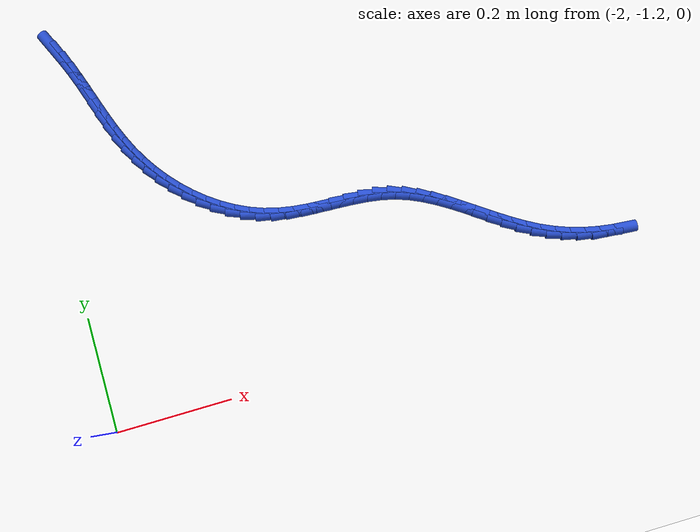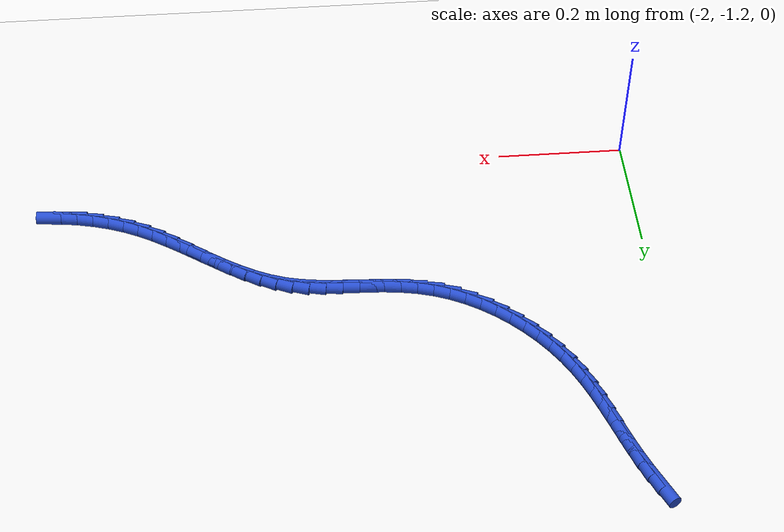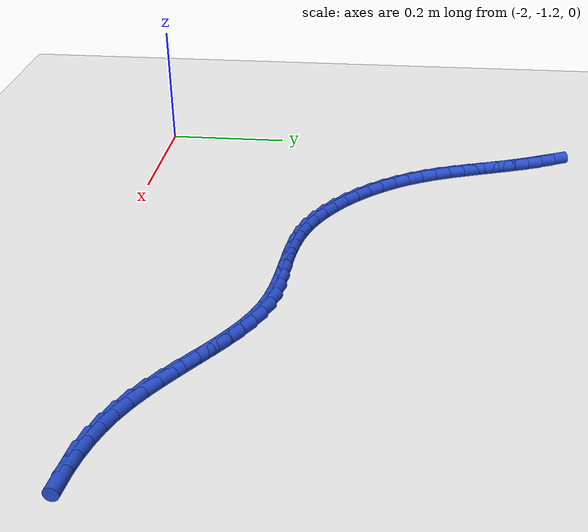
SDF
<sdf version="1.6">
 <world name="default">
  <model name="ground_plane">
   <static>1</static>
   <link name="link">
    <collision name="collision">
     <geometry><plane><normal>0 0 1</normal><size>100 100</size></plane></geometry>
     <surface><friction><ode><mu>100</mu><mu2>50</mu2></ode></friction></surface>
    </collision>
    <visual name="visual">
     <cast_shadows>0</cast_shadows>
     <geometry><plane><normal>0 0 1</normal><size>100 100</size></plane></geometry>
     <material>
      <script><uri>file://media/materials/scripts/gazebo.material</uri><name>Gazebo/WhiteGlow</name></script>
     </material>
    </visual>
   </link>
  </model>
  <model name="line">
   <link name="link_151">
    <pose>-1.9370911720204527 -0.5251809590860355 0.01 0 1.57 -1.1470673433177083</pose>
    <collision name="collision">
     <geometry><cylinder><radius>0.01</radius><length>0.08</length></cylinder></geometry>
    </collision>
    <visual name="visual">
     <material>
      <script><name>Gazebo/Blue</name><uri>file://media/materials/scripts/gazebo.material</uri></script>
     </material>
     <geometry><cylinder><radius>0.01</radius><length>0.08</length></cylinder></geometry>
    </visual>
   </link>
   <link name="link_152">
    <pose>-1.9267315709550583 -0.5481485673630856 0.01 0 1.57 -1.1813349950345122</pose>
    <collision name="collision">
     <geometry><cylinder><radius>0.01</radius><length>0.08</length></cylinder></geometry>
    </collision>
    <visual name="visual">
     <material>
      <script><name>Gazebo/Blue</name><uri>file://media/materials/scripts/gazebo.material</uri></script>
     </material>
     <geometry><cylinder><radius>0.01</radius><length>0.08</length></cylinder></geometry>
    </visual>
   </link>
   <link name="link_153">
    <pose>-1.9171488947158926 -0.5714967250308787 0.01 0 1.57 -1.2171959830304275</pose>
    <collision name="collision">
     <geometry><cylinder><radius>0.01</radius><length>0.08</length></cylinder></geometry>
    </collision>
    <visual name="visual">
     <material>
      <script><name>Gazebo/Blue</name><uri>file://media/materials/scripts/gazebo.material</uri></script>
     </material>
     <geometry><cylinder><radius>0.01</radius><length>0.08</length></cylinder></geometry>
    </visual>
   </link>
   <link name="link_154">
    <pose>-1.9083735684133178 -0.5952707551262953 0.01 0 1.57 -1.240139260011457</pose>
    <collision name="collision">
     <geometry><cylinder><radius>0.01</radius><length>0.08</length></cylinder></geometry>
    </collision>
    <visual name="visual">
     <material>
      <script><name>Gazebo/Blue</name><uri>file://media/materials/scripts/gazebo.material</uri></script>
     </material>
     <geometry><cylinder><radius>0.01</radius><length>0.08</length></cylinder></geometry>
    </visual>
   </link>
   <link name="link_155">
    <pose>-1.9001076054086279 -0.6193515758923537 0.01 0 1.57 -1.2476119665529166</pose>
    <collision name="collision">
     <geometry><cylinder><radius>0.01</radius><length>0.08</length></cylinder></geometry>
    </collision>
    <visual name="visual">
     <material>
      <script><name>Gazebo/Blue</name><uri>file://media/materials/scripts/gazebo.material</uri></script>
     </material>
     <geometry><cylinder><radius>0.01</radius><length>0.08</length></cylinder></geometry>
    </visual>
   </link>
   <link name="link_156">
    <pose>-1.8919899833547689 -0.643588549537107 0.01 0 1.57 -1.2398128468559857</pose>
    <collision name="collision">
     <geometry><cylinder><radius>0.01</radius><length>0.08</length></cylinder></geometry>
    </collision>
    <visual name="visual">
     <material>
      <script><name>Gazebo/Blue</name><uri>file://media/materials/scripts/gazebo.material</uri></script>
     </material>
     <geometry><cylinder><radius>0.01</radius><length>0.08</length></cylinder></geometry>
    </visual>
   </link>
   <link name="link_157">
    <pose>-1.883659679904686 -0.6678310382686059 0.01 0 1.57 -1.216855159934486</pose>
    <collision name="collision">
     <geometry><cylinder><radius>0.01</radius><length>0.08</length></cylinder></geometry>
    </collision>
    <visual name="visual">
     <material>
      <script><name>Gazebo/Blue</name><uri>file://media/materials/scripts/gazebo.material</uri></script>
     </material>
     <geometry><cylinder><radius>0.01</radius><length>0.08</length></cylinder></geometry>
    </visual>
   </link>
   <link name="link_158">
    <pose>-1.8747556727113273 -0.691928404294904 0.01 0 1.57 -1.178822379473666</pose>
    <collision name="collision">
     <geometry><cylinder><radius>0.01</radius><length>0.08</length></cylinder></geometry>
    </collision>
    <visual name="visual">
     <material>
      <script><name>Gazebo/Blue</name><uri>file://media/materials/scripts/gazebo.material</uri></script>
     </material>
     <geometry><cylinder><radius>0.01</radius><length>0.08</length></cylinder></geometry>
    </visual>
   </link>
   <link name="link_159">
    <pose>-1.8649169394276375 -0.7157300098240532 0.01 0 1.57 -1.1259250699698995</pose>
    <collision name="collision">
     <geometry><cylinder><radius>0.01</radius><length>0.08</length></cylinder></geometry>
    </collision>
    <visual name="visual">
     <material>
      <script><name>Gazebo/Blue</name><uri>file://media/materials/scripts/gazebo.material</uri></script>
     </material>
     <geometry><cylinder><radius>0.01</radius><length>0.08</length></cylinder></geometry>
    </visual>
   </link>
   <link name="link_160">
    <pose>-1.8537824577065631 -0.7390852170641063 0.01 0 1.57 -1.0592751408933472</pose>
    <collision name="collision">
     <geometry><cylinder><radius>0.01</radius><length>0.08</length></cylinder></geometry>
    </collision>
    <visual name="visual">
     <material>
      <script><name>Gazebo/Blue</name><uri>file://media/materials/scripts/gazebo.material</uri></script>
     </material>
     <geometry><cylinder><radius>0.01</radius><length>0.08</length></cylinder></geometry>
    </visual>
   </link>
   <link name="link_161">
    <pose>-1.8410076429520437 -0.7618422185899201 0.01 0 1.57 -0.9876713929736592</pose>
    <collision name="collision">
     <geometry><cylinder><radius>0.01</radius><length>0.08</length></cylinder></geometry>
    </collision>
    <visual name="visual">
     <material>
      <script><name>Gazebo/Blue</name><uri>file://media/materials/scripts/gazebo.material</uri></script>
     </material>
     <geometry><cylinder><radius>0.01</radius><length>0.08</length></cylinder></geometry>
    </visual>
   </link>
   <link name="link_162">
    <pose>-1.826502832059713 -0.7838310679597047 0.01 0 1.57 -0.916845494743942</pose>
    <collision name="collision">
     <geometry><cylinder><radius>0.01</radius><length>0.08</length></cylinder></geometry>
    </collision>
    <visual name="visual">
     <material>
      <script><name>Gazebo/Blue</name><uri>file://media/materials/scripts/gazebo.material</uri></script>
     </material>
     <geometry><cylinder><radius>0.01</radius><length>0.08</length></cylinder></geometry>
    </visual>
   </link>
   <link name="link_163">
    <pose>-1.8103792891147852 -0.8048675216960914 0.01 0 1.57 -0.8459201205117904</pose>
    <collision name="collision">
     <geometry><cylinder><radius>0.01</radius><length>0.08</length></cylinder></geometry>
    </collision>
    <visual name="visual">
     <material>
      <script><name>Gazebo/Blue</name><uri>file://media/materials/scripts/gazebo.material</uri></script>
     </material>
     <geometry><cylinder><radius>0.01</radius><length>0.08</length></cylinder></geometry>
    </visual>
   </link>
   <link name="link_164">
    <pose>-1.7927537249583987 -0.8247669487561279 0.01 0 1.57 -0.7738764383146814</pose>
    <collision name="collision">
     <geometry><cylinder><radius>0.01</radius><length>0.08</length></cylinder></geometry>
    </collision>
    <visual name="visual">
     <material>
      <script><name>Gazebo/Blue</name><uri>file://media/materials/scripts/gazebo.material</uri></script>
     </material>
     <geometry><cylinder><radius>0.01</radius><length>0.08</length></cylinder></geometry>
    </visual>
   </link>
   <link name="link_165">
    <pose>-1.7737428504316926 -0.8433447180968637 0.01 0 1.57 -0.6997205661806511</pose>
    <collision name="collision">
     <geometry><cylinder><radius>0.01</radius><length>0.08</length></cylinder></geometry>
    </collision>
    <visual name="visual">
     <material>
      <script><name>Gazebo/Blue</name><uri>file://media/materials/scripts/gazebo.material</uri></script>
     </material>
     <geometry><cylinder><radius>0.01</radius><length>0.08</length></cylinder></geometry>
    </visual>
   </link>
   <link name="link_166">
    <pose>-1.753463376375807 -0.8604161986753465 0.01 0 1.57 -0.6224842189856219</pose>
    <collision name="collision">
     <geometry><cylinder><radius>0.01</radius><length>0.08</length></cylinder></geometry>
    </collision>
    <visual name="visual">
     <material>
      <script><name>Gazebo/Blue</name><uri>file://media/materials/scripts/gazebo.material</uri></script>
     </material>
     <geometry><cylinder><radius>0.01</radius><length>0.08</length></cylinder></geometry>
    </visual>
   </link>
   <link name="link_167">
    <pose>-1.732032013631881 -0.8757967594486247 0.01 0 1.57 -0.5412401066527162</pose>
    <collision name="collision">
     <geometry><cylinder><radius>0.01</radius><length>0.08</length></cylinder></geometry>
    </collision>
    <visual name="visual">
     <material>
      <script><name>Gazebo/Blue</name><uri>file://media/materials/scripts/gazebo.material</uri></script>
     </material>
     <geometry><cylinder><radius>0.01</radius><length>0.08</length></cylinder></geometry>
    </visual>
   </link>
   <link name="link_168">
    <pose>-1.709565473041052 -0.8893017693737473 0.01 0 1.57 -0.4551387898310127</pose>
    <collision name="collision">
     <geometry><cylinder><radius>0.01</radius><length>0.08</length></cylinder></geometry>
    </collision>
    <visual name="visual">
     <material>
      <script><name>Gazebo/Blue</name><uri>file://media/materials/scripts/gazebo.material</uri></script>
     </material>
     <geometry><cylinder><radius>0.01</radius><length>0.08</length></cylinder></geometry>
    </visual>
   </link>
   <link name="link_169">
    <pose>-1.6861804654444614 -0.9007465974077626 0.01 0 1.57 -0.3634737428033627</pose>
    <collision name="collision">
     <geometry><cylinder><radius>0.01</radius><length>0.08</length></cylinder></geometry>
    </collision>
    <visual name="visual">
     <material>
      <script><name>Gazebo/Blue</name><uri>file://media/materials/scripts/gazebo.material</uri></script>
     </material>
     <geometry><cylinder><radius>0.01</radius><length>0.08</length></cylinder></geometry>
    </visual>
   </link>
   <link name="link_170">
    <pose>-1.6619937016832471 -0.9099466125077192 0.01 0 1.57 -0.26597804077119147</pose>
    <collision name="collision">
     <geometry><cylinder><radius>0.01</radius><length>0.08</length></cylinder></geometry>
    </collision>
    <visual name="visual">
     <material>
      <script><name>Gazebo/Blue</name><uri>file://media/materials/scripts/gazebo.material</uri></script>
     </material>
     <geometry><cylinder><radius>0.01</radius><length>0.08</length></cylinder></geometry>
    </visual>
   </link>
   <link name="link_171">
    <pose>-1.637122296008496 -0.9167224018207927 0.01 0 1.57 -0.17427758403707405</pose>
    <collision name="collision">
     <geometry><cylinder><radius>0.01</radius><length>0.08</length></cylinder></geometry>
    </collision>
    <visual name="visual">
     <material>
      <script><name>Gazebo/Blue</name><uri>file://media/materials/scripts/gazebo.material</uri></script>
     </material>
     <geometry><cylinder><radius>0.01</radius><length>0.08</length></cylinder></geometry>
    </visual>
   </link>
   <link name="link_172">
    <pose>-1.6117067564704466 -0.9211971560678006 0.01 0 1.57 -0.10664015811588737</pose>
    <collision name="collision">
     <geometry><cylinder><radius>0.01</radius><length>0.08</length></cylinder></geometry>
    </collision>
    <visual name="visual">
     <material>
      <script><name>Gazebo/Blue</name><uri>file://media/materials/scripts/gazebo.material</uri></script>
     </material>
     <geometry><cylinder><radius>0.01</radius><length>0.08</length></cylinder></geometry>
    </visual>
   </link>
   <link name="link_173">
    <pose>-1.5859233928276413 -0.9239571683841545 0.01 0 1.57 -0.06423939490129445</pose>
    <collision name="collision">
     <geometry><cylinder><radius>0.01</radius><length>0.08</length></cylinder></geometry>
    </collision>
    <visual name="visual">
     <material>
      <script><name>Gazebo/Blue</name><uri>file://media/materials/scripts/gazebo.material</uri></script>
     </material>
     <geometry><cylinder><radius>0.01</radius><length>0.08</length></cylinder></geometry>
    </visual>
   </link>
   <link name="link_174">
    <pose>-1.5599515415631644 -0.9256278832058982 0.01 0 1.57 -0.04641833394194319</pose>
    <collision name="collision">
     <geometry><cylinder><radius>0.01</radius><length>0.08</length></cylinder></geometry>
    </collision>
    <visual name="visual">
     <material>
      <script><name>Gazebo/Blue</name><uri>file://media/materials/scripts/gazebo.material</uri></script>
     </material>
     <geometry><cylinder><radius>0.01</radius><length>0.08</length></cylinder></geometry>
    </visual>
   </link>
   <link name="link_175">
    <pose>-1.5339705391601008 -0.9268347449690751 0.01 0 1.57 -0.052968996233804355</pose>
    <collision name="collision">
     <geometry><cylinder><radius>0.01</radius><length>0.08</length></cylinder></geometry>
    </collision>
    <visual name="visual">
     <material>
      <script><name>Gazebo/Blue</name><uri>file://media/materials/scripts/gazebo.material</uri></script>
     </material>
     <geometry><cylinder><radius>0.01</radius><length>0.08</length></cylinder></geometry>
    </visual>
   </link>
   <link name="link_176">
    <pose>-1.5081597221015357 -0.9282031981097295 0.01 0 1.57 -0.08445609629542271</pose>
    <collision name="collision">
     <geometry><cylinder><radius>0.01</radius><length>0.08</length></cylinder></geometry>
    </collision>
    <visual name="visual">
     <material>
      <script><name>Gazebo/Blue</name><uri>file://media/materials/scripts/gazebo.material</uri></script>
     </material>
     <geometry><cylinder><radius>0.01</radius><length>0.08</length></cylinder></geometry>
    </visual>
   </link>
   <link name="link_177">
    <pose>-1.4826984268705536 -0.9303586870639042 0.01 0 1.57 -0.14214044997337136</pose>
    <collision name="collision">
     <geometry><cylinder><radius>0.01</radius><length>0.08</length></cylinder></geometry>
    </collision>
    <visual name="visual">
     <material>
      <script><name>Gazebo/Blue</name><uri>file://media/materials/scripts/gazebo.material</uri></script>
     </material>
     <geometry><cylinder><radius>0.01</radius><length>0.08</length></cylinder></geometry>
    </visual>
   </link>
   <link name="link_178">
    <pose>-1.4577659899502404 -0.9339266562676438 0.01 0 1.57 -0.22741348169321382</pose>
    <collision name="collision">
     <geometry><cylinder><radius>0.01</radius><length>0.08</length></cylinder></geometry>
    </collision>
    <visual name="visual">
     <material>
      <script><name>Gazebo/Blue</name><uri>file://media/materials/scripts/gazebo.material</uri></script>
     </material>
     <geometry><cylinder><radius>0.01</radius><length>0.08</length></cylinder></geometry>
    </visual>
   </link>
   <link name="link_179">
    <pose>-1.4335417478236805 -0.9395325501569916 0.01 0 1.57 -0.3333946243929735</pose>
    <collision name="collision">
     <geometry><cylinder><radius>0.01</radius><length>0.08</length></cylinder></geometry>
    </collision>
    <visual name="visual">
     <material>
      <script><name>Gazebo/Blue</name><uri>file://media/materials/scripts/gazebo.material</uri></script>
     </material>
     <geometry><cylinder><radius>0.01</radius><length>0.08</length></cylinder></geometry>
    </visual>
   </link>
   <link name="link_180">
    <pose>-1.4101506930324552 -0.9476333914858411 0.01 0 1.57 -0.42825313667225223</pose>
    <collision name="collision">
     <geometry><cylinder><radius>0.01</radius><length>0.08</length></cylinder></geometry>
    </collision>
    <visual name="visual">
     <material>
      <script><name>Gazebo/Blue</name><uri>file://media/materials/scripts/gazebo.material</uri></script>
     </material>
     <geometry><cylinder><radius>0.01</radius><length>0.08</length></cylinder></geometry>
    </visual>
   </link>
   <link name="link_181">
    <pose>-1.387489447441249 -0.9579784410664176 0.01 0 1.57 -0.5028604599239254</pose>
    <collision name="collision">
     <geometry><cylinder><radius>0.01</radius><length>0.08</length></cylinder></geometry>
    </collision>
    <visual name="visual">
     <material>
      <script><name>Gazebo/Blue</name><uri>file://media/materials/scripts/gazebo.material</uri></script>
     </material>
     <geometry><cylinder><radius>0.01</radius><length>0.08</length></cylinder></geometry>
    </visual>
   </link>
   <link name="link_182">
    <pose>-1.365394653899631 -0.9701310739187082 0.01 0 1.57 -0.5574806348972353</pose>
    <collision name="collision">
     <geometry><cylinder><radius>0.01</radius><length>0.08</length></cylinder></geometry>
    </collision>
    <visual name="visual">
     <material>
      <script><name>Gazebo/Blue</name><uri>file://media/materials/scripts/gazebo.material</uri></script>
     </material>
     <geometry><cylinder><radius>0.01</radius><length>0.08</length></cylinder></geometry>
    </visual>
   </link>
   <link name="link_183">
    <pose>-1.3437029550031572 -0.9836546642754743 0.01 0 1.57 -0.593039917648</pose>
    <collision name="collision">
     <geometry><cylinder><radius>0.01</radius><length>0.08</length></cylinder></geometry>
    </collision>
    <visual name="visual">
     <material>
      <script><name>Gazebo/Blue</name><uri>file://media/materials/scripts/gazebo.material</uri></script>
     </material>
     <geometry><cylinder><radius>0.01</radius><length>0.08</length></cylinder></geometry>
    </visual>
   </link>
   <link name="link_184">
    <pose>-1.3222509933473852 -0.9981125863694783 0.01 0 1.57 -0.6104973784599937</pose>
    <collision name="collision">
     <geometry><cylinder><radius>0.01</radius><length>0.08</length></cylinder></geometry>
    </collision>
    <visual name="visual">
     <material>
      <script><name>Gazebo/Blue</name><uri>file://media/materials/scripts/gazebo.material</uri></script>
     </material>
     <geometry><cylinder><radius>0.01</radius><length>0.08</length></cylinder></geometry>
    </visual>
   </link>
   <link name="link_185">
    <pose>-1.3008754115278716 -1.0130682144334817 0.01 0 1.57 -0.6105044328955166</pose>
    <collision name="collision">
     <geometry><cylinder><radius>0.01</radius><length>0.08</length></cylinder></geometry>
    </collision>
    <visual name="visual">
     <material>
      <script><name>Gazebo/Blue</name><uri>file://media/materials/scripts/gazebo.material</uri></script>
     </material>
     <geometry><cylinder><radius>0.01</radius><length>0.08</length></cylinder></geometry>
    </visual>
   </link>
   <link name="link_186">
    <pose>-1.2794128521401735 -1.028084922700246 0.01 0 1.57 -0.5932736209290373</pose>
    <collision name="collision">
     <geometry><cylinder><radius>0.01</radius><length>0.08</length></cylinder></geometry>
    </collision>
    <visual name="visual">
     <material>
      <script><name>Gazebo/Blue</name><uri>file://media/materials/scripts/gazebo.material</uri></script>
     </material>
     <geometry><cylinder><radius>0.01</radius><length>0.08</length></cylinder></geometry>
    </visual>
   </link>
   <link name="link_187">
    <pose>-1.2576999577798476 -1.042726085402533 0.01 0 1.57 -0.5585952418467379</pose>
    <collision name="collision">
     <geometry><cylinder><radius>0.01</radius><length>0.08</length></cylinder></geometry>
    </collision>
    <visual name="visual">
     <material>
      <script><name>Gazebo/Blue</name><uri>file://media/materials/scripts/gazebo.material</uri></script>
     </material>
     <geometry><cylinder><radius>0.01</radius><length>0.08</length></cylinder></geometry>
    </visual>
   </link>
   <link name="link_188">
    <pose>-1.2355733710424506 -1.0565550767731051 0.01 0 1.57 -0.5059892355075489</pose>
    <collision name="collision">
     <geometry><cylinder><radius>0.01</radius><length>0.08</length></cylinder></geometry>
    </collision>
    <visual name="visual">
     <material>
      <script><name>Gazebo/Blue</name><uri>file://media/materials/scripts/gazebo.material</uri></script>
     </material>
     <geometry><cylinder><radius>0.01</radius><length>0.08</length></cylinder></geometry>
    </visual>
   </link>
   <link name="link_189">
    <pose>-1.2128697345235404 -1.0691352710447226 0.01 0 1.57 -0.4355195302001242</pose>
    <collision name="collision">
     <geometry><cylinder><radius>0.01</radius><length>0.08</length></cylinder></geometry>
    </collision>
    <visual name="visual">
     <material>
      <script><name>Gazebo/Blue</name><uri>file://media/materials/scripts/gazebo.material</uri></script>
     </material>
     <geometry><cylinder><radius>0.01</radius><length>0.08</length></cylinder></geometry>
    </visual>
   </link>
   <link name="link_190">
    <pose>-1.1894321290429588 -1.080041222851089 0.01 0 1.57 -0.3579005850697201</pose>
    <collision name="collision">
     <geometry><cylinder><radius>0.01</radius><length>0.08</length></cylinder></geometry>
    </collision>
    <visual name="visual">
     <material>
      <script><name>Gazebo/Blue</name><uri>file://media/materials/scripts/gazebo.material</uri></script>
     </material>
     <geometry><cylinder><radius>0.01</radius><length>0.08</length></cylinder></geometry>
    </visual>
   </link>
   <link name="link_191">
    <pose>-1.1652423580789566 -1.0890883878681592 0.01 0 1.57 -0.28360853691713167</pose>
    <collision name="collision">
     <geometry><cylinder><radius>0.01</radius><length>0.08</length></cylinder></geometry>
    </collision>
    <visual name="visual">
     <material>
      <script><name>Gazebo/Blue</name><uri>file://media/materials/scripts/gazebo.material</uri></script>
     </material>
     <geometry><cylinder><radius>0.01</radius><length>0.08</length></cylinder></geometry>
    </visual>
   </link>
   <link name="link_192">
    <pose>-1.1404159406075776 -1.0963244275496133 0.01 0 1.57 -0.2130379284991466</pose>
    <collision name="collision">
     <geometry><cylinder><radius>0.01</radius><length>0.08</length></cylinder></geometry>
    </collision>
    <visual name="visual">
     <material>
      <script><name>Gazebo/Blue</name><uri>file://media/materials/scripts/gazebo.material</uri></script>
     </material>
     <geometry><cylinder><radius>0.01</radius><length>0.08</length></cylinder></geometry>
    </visual>
   </link>
   <link name="link_193">
    <pose>-1.1150738319727431 -1.101806443960366 0.01 0 1.57 -0.14602234151106003</pose>
    <collision name="collision">
     <geometry><cylinder><radius>0.01</radius><length>0.08</length></cylinder></geometry>
    </collision>
    <visual name="visual">
     <material>
      <script><name>Gazebo/Blue</name><uri>file://media/materials/scripts/gazebo.material</uri></script>
     </material>
     <geometry><cylinder><radius>0.01</radius><length>0.08</length></cylinder></geometry>
    </visual>
   </link>
   <link name="link_194">
    <pose>-1.0893369875183743 -1.1055915391653337 0.01 0 1.57 -0.08229065838216655</pose>
    <collision name="collision">
     <geometry><cylinder><radius>0.01</radius><length>0.08</length></cylinder></geometry>
    </collision>
    <visual name="visual">
     <material>
      <script><name>Gazebo/Blue</name><uri>file://media/materials/scripts/gazebo.material</uri></script>
     </material>
     <geometry><cylinder><radius>0.01</radius><length>0.08</length></cylinder></geometry>
    </visual>
   </link>
  </model>
 </world>
</sdf>
